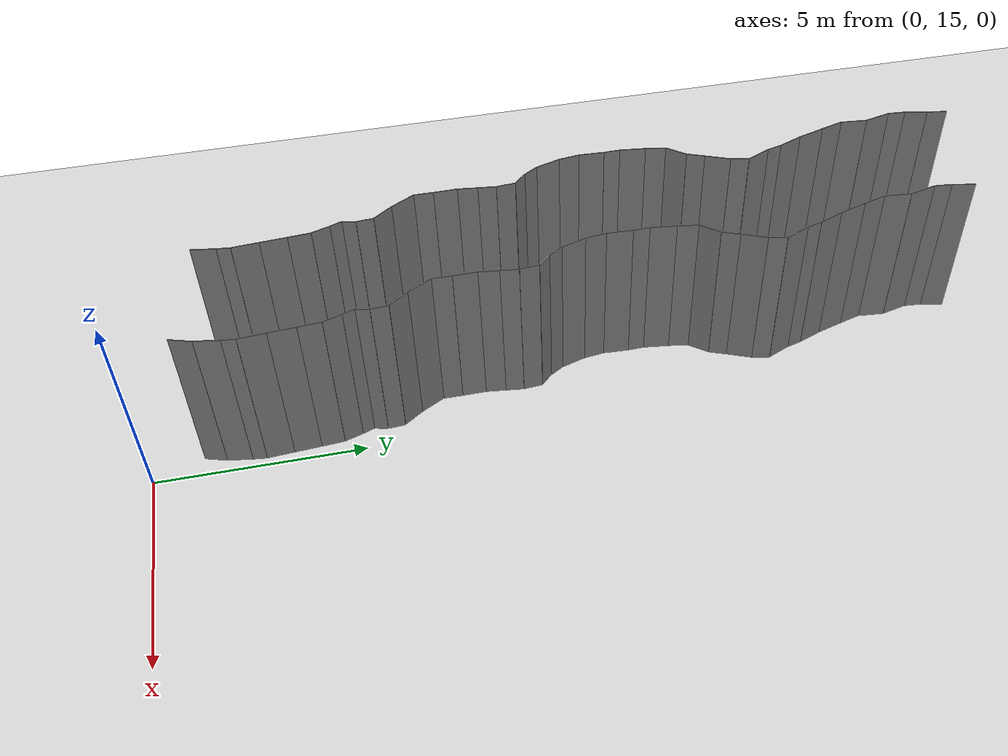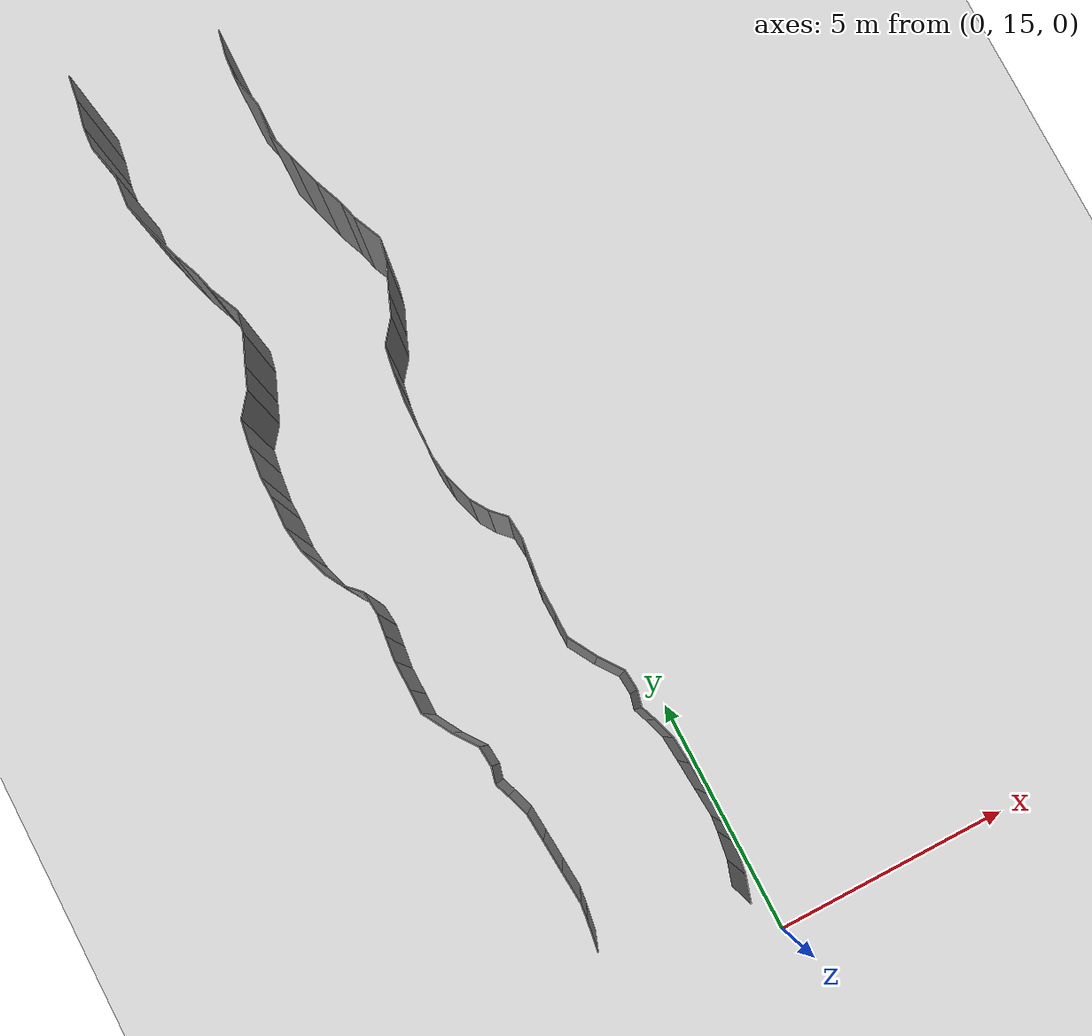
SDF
<sdf version="1.6">
 <world name="default">
  <model name="ground_plane">
   <static>1</static>
   <link name="link">
    <collision name="collision">
     <geometry><plane><normal>0 0 1</normal><size>200 200</size></plane></geometry>
     <surface><friction><ode><mu>100</mu><mu2>50</mu2></ode></friction></surface>
    </collision>
    <visual name="visual">
     <cast_shadows>0</cast_shadows>
     <geometry><plane><normal>0 0 1</normal><size>200 200</size></plane></geometry>
     <material>
      <script><uri>file://media/materials/scripts/gazebo.material</uri><name>Gazebo/Grey</name></script>
     </material>
    </visual>
   </link>
   <pose>0 100 0 0 -0 0</pose>
  </model>
  <model name="wall_73">
   <static>1</static>
   <pose>-0.4114704480557809 16.46128203625656 2 0 0 -0.3016783330120834</pose>
   <link name="link">
    <collision name="collision"><geometry><box><size>0.02 0.53916646876 4</size></box></geometry></collision>
    <visual name="visual">
     <material>
      <script><name>Gazebo/Grey</name><uri>file://media/materials/scripts/gazebo.material</uri></script>
     </material>
     <geometry><box><size>0.02 0.53916646876 4</size></box></geometry>
    </visual>
   </link>
  </model>
  <model name="wall_74">
   <static>1</static>
   <pose>-3.2860115752755705 17.01383835826963 2 0 0 -0.15249082622703872</pose>
   <link name="link">
    <collision name="collision"><geometry><box><size>0.02 0.5972257192 4</size></box></geometry></collision>
    <visual name="visual">
     <material>
      <script><name>Gazebo/Grey</name><uri>file://media/materials/scripts/gazebo.material</uri></script>
     </material>
     <geometry><box><size>0.02 0.5972257192 4</size></box></geometry>
    </visual>
   </link>
  </model>
  <model name="wall_75">
   <static>1</static>
   <pose>-0.28601157527557053 17.01383835826963 2 0 0 -0.15249082622703872</pose>
   <link name="link">
    <collision name="collision"><geometry><box><size>0.02 0.5972257192 4</size></box></geometry></collision>
    <visual name="visual">
     <material>
      <script><name>Gazebo/Grey</name><uri>file://media/materials/scripts/gazebo.material</uri></script>
     </material>
     <geometry><box><size>0.02 0.5972257192 4</size></box></geometry>
    </visual>
   </link>
  </model>
  <model name="wall_76">
   <static>1</static>
   <pose>-3.222303903417434 17.472723167792196 2 0 0 -0.11159348052013675</pose>
   <link name="link">
    <collision name="collision"><geometry><box><size>0.02 0.329523904005 4</size></box></geometry></collision>
    <visual name="visual">
     <material>
      <script><name>Gazebo/Grey</name><uri>file://media/materials/scripts/gazebo.material</uri></script>
     </material>
     <geometry><box><size>0.02 0.329523904005 4</size></box></geometry>
    </visual>
   </link>
  </model>
  <model name="wall_77">
   <static>1</static>
   <pose>-0.2223039034174339 17.472723167792196 2 0 0 -0.11159348052013675</pose>
   <link name="link">
    <collision name="collision"><geometry><box><size>0.02 0.329523904005 4</size></box></geometry></collision>
    <visual name="visual">
     <material>
      <script><name>Gazebo/Grey</name><uri>file://media/materials/scripts/gazebo.material</uri></script>
     </material>
     <geometry><box><size>0.02 0.329523904005 4</size></box></geometry>
    </visual>
   </link>
  </model>
  <model name="wall_78">
   <static>1</static>
   <pose>-3.226909889007271 17.96044130256942 2 0 0 0.07073227570332395</pose>
   <link name="link">
    <collision name="collision"><geometry><box><size>0.02 0.649586315642 4</size></box></geometry></collision>
    <visual name="visual">
     <material>
      <script><name>Gazebo/Grey</name><uri>file://media/materials/scripts/gazebo.material</uri></script>
     </material>
     <geometry><box><size>0.02 0.649586315642 4</size></box></geometry>
    </visual>
   </link>
  </model>
  <model name="wall_79">
   <static>1</static>
   <pose>-0.22690988900727094 17.96044130256942 2 0 0 0.07073227570332395</pose>
   <link name="link">
    <collision name="collision"><geometry><box><size>0.02 0.649586315642 4</size></box></geometry></collision>
    <visual name="visual">
     <material>
      <script><name>Gazebo/Grey</name><uri>file://media/materials/scripts/gazebo.material</uri></script>
     </material>
     <geometry><box><size>0.02 0.649586315642 4</size></box></geometry>
    </visual>
   </link>
  </model>
  <model name="wall_80">
   <static>1</static>
   <pose>-3.2712799035412155 18.60773303722731 2 0 0 0.06614246399566409</pose>
   <link name="link">
    <collision name="collision"><geometry><box><size>0.02 0.648038445143 4</size></box></geometry></collision>
    <visual name="visual">
     <material>
      <script><name>Gazebo/Grey</name><uri>file://media/materials/scripts/gazebo.material</uri></script>
     </material>
     <geometry><box><size>0.02 0.648038445143 4</size></box></geometry>
    </visual>
   </link>
  </model>
  <model name="wall_81">
   <static>1</static>
   <pose>-0.27127990354121545 18.60773303722731 2 0 0 0.06614246399566409</pose>
   <link name="link">
    <collision name="collision"><geometry><box><size>0.02 0.648038445143 4</size></box></geometry></collision>
    <visual name="visual">
     <material>
      <script><name>Gazebo/Grey</name><uri>file://media/materials/scripts/gazebo.material</uri></script>
     </material>
     <geometry><box><size>0.02 0.648038445143 4</size></box></geometry>
    </visual>
   </link>
  </model>
  <model name="wall_82">
   <static>1</static>
   <pose>-3.313457188234754 19.205664199724627 2 0 0 0.0754570886847107</pose>
   <link name="link">
    <collision name="collision"><geometry><box><size>0.02 0.550808235142 4</size></box></geometry></collision>
    <visual name="visual">
     <material>
      <script><name>Gazebo/Grey</name><uri>file://media/materials/scripts/gazebo.material</uri></script>
     </material>
     <geometry><box><size>0.02 0.550808235142 4</size></box></geometry>
    </visual>
   </link>
  </model>
  <model name="wall_83">
   <static>1</static>
   <pose>-0.3134571882347541 19.205664199724627 2 0 0 0.0754570886847107</pose>
   <link name="link">
    <collision name="collision"><geometry><box><size>0.02 0.550808235142 4</size></box></geometry></collision>
    <visual name="visual">
     <material>
      <script><name>Gazebo/Grey</name><uri>file://media/materials/scripts/gazebo.material</uri></script>
     </material>
     <geometry><box><size>0.02 0.550808235142 4</size></box></geometry>
    </visual>
   </link>
  </model>
  <model name="wall_84">
   <static>1</static>
   <pose>-3.4066834825812844 19.703090131503117 2 0 0 0.31444716952891916</pose>
   <link name="link">
    <collision name="collision"><geometry><box><size>0.02 0.468586958384 4</size></box></geometry></collision>
    <visual name="visual">
     <material>
      <script><name>Gazebo/Grey</name><uri>file://media/materials/scripts/gazebo.material</uri></script>
     </material>
     <geometry><box><size>0.02 0.468586958384 4</size></box></geometry>
    </visual>
   </link>
  </model>
  <model name="wall_85">
   <static>1</static>
   <pose>-0.4066834825812844 19.703090131503117 2 0 0 0.31444716952891916</pose>
   <link name="link">
    <collision name="collision"><geometry><box><size>0.02 0.468586958384 4</size></box></geometry></collision>
    <visual name="visual">
     <material>
      <script><name>Gazebo/Grey</name><uri>file://media/materials/scripts/gazebo.material</uri></script>
     </material>
     <geometry><box><size>0.02 0.468586958384 4</size></box></geometry>
    </visual>
   </link>
  </model>
  <model name="wall_86">
   <static>1</static>
   <pose>-3.53479159318961 20.07139679493496 2 0 0 0.36526435588221795</pose>
   <link name="link">
    <collision name="collision"><geometry><box><size>0.02 0.31155589357 4</size></box></geometry></collision>
    <visual name="visual">
     <material>
      <script><name>Gazebo/Grey</name><uri>file://media/materials/scripts/gazebo.material</uri></script>
     </material>
     <geometry><box><size>0.02 0.31155589357 4</size></box></geometry>
    </visual>
   </link>
  </model>
  <model name="wall_87">
   <static>1</static>
   <pose>-0.5347915931896101 20.07139679493496 2 0 0 0.36526435588221795</pose>
   <link name="link">
    <collision name="collision"><geometry><box><size>0.02 0.31155589357 4</size></box></geometry></collision>
    <visual name="visual">
     <material>
      <script><name>Gazebo/Grey</name><uri>file://media/materials/scripts/gazebo.material</uri></script>
     </material>
     <geometry><box><size>0.02 0.31155589357 4</size></box></geometry>
    </visual>
   </link>
  </model>
  <model name="wall_88">
   <static>1</static>
   <pose>-3.5517194320074505 20.377464157151785 2 0 0 -0.23660216385454935</pose>
   <link name="link">
    <collision name="collision"><geometry><box><size>0.02 0.330335504119 4</size></box></geometry></collision>
    <visual name="visual">
     <material>
      <script><name>Gazebo/Grey</name><uri>file://media/materials/scripts/gazebo.material</uri></script>
     </material>
     <geometry><box><size>0.02 0.330335504119 4</size></box></geometry>
    </visual>
   </link>
  </model>
  <model name="wall_89">
   <static>1</static>
   <pose>-0.5517194320074505 20.377464157151785 2 0 0 -0.23660216385454935</pose>
   <link name="link">
    <collision name="collision"><geometry><box><size>0.02 0.330335504119 4</size></box></geometry></collision>
    <visual name="visual">
     <material>
      <script><name>Gazebo/Grey</name><uri>file://media/materials/scripts/gazebo.material</uri></script>
     </material>
     <geometry><box><size>0.02 0.330335504119 4</size></box></geometry>
    </visual>
   </link>
  </model>
  <model name="wall_90">
   <static>1</static>
   <pose>-3.5292512122725728 20.747059901316863 2 0 0 0.07757101304430174</pose>
   <link name="link">
    <collision name="collision"><geometry><box><size>0.02 0.419320064797 4</size></box></geometry></collision>
    <visual name="visual">
     <material>
      <script><name>Gazebo/Grey</name><uri>file://media/materials/scripts/gazebo.material</uri></script>
     </material>
     <geometry><box><size>0.02 0.419320064797 4</size></box></geometry>
    </visual>
   </link>
  </model>
  <model name="wall_91">
   <static>1</static>
   <pose>-0.5292512122725728 20.747059901316863 2 0 0 0.07757101304430174</pose>
   <link name="link">
    <collision name="collision"><geometry><box><size>0.02 0.419320064797 4</size></box></geometry></collision>
    <visual name="visual">
     <material>
      <script><name>Gazebo/Grey</name><uri>file://media/materials/scripts/gazebo.material</uri></script>
     </material>
     <geometry><box><size>0.02 0.419320064797 4</size></box></geometry>
    </visual>
   </link>
  </model>
  <model name="wall_92">
   <static>1</static>
   <pose>-3.7108048090435637 21.18484831671798 2 0 0 0.6257482379373795</pose>
   <link name="link">
    <collision name="collision"><geometry><box><size>0.02 0.564470751829 4</size></box></geometry></collision>
    <visual name="visual">
     <material>
      <script><name>Gazebo/Grey</name><uri>file://media/materials/scripts/gazebo.material</uri></script>
     </material>
     <geometry><box><size>0.02 0.564470751829 4</size></box></geometry>
    </visual>
   </link>
  </model>
  <model name="wall_93">
   <static>1</static>
   <pose>-0.7108048090435637 21.18484831671798 2 0 0 0.6257482379373795</pose>
   <link name="link">
    <collision name="collision"><geometry><box><size>0.02 0.564470751829 4</size></box></geometry></collision>
    <visual name="visual">
     <material>
      <script><name>Gazebo/Grey</name><uri>file://media/materials/scripts/gazebo.material</uri></script>
     </material>
     <geometry><box><size>0.02 0.564470751829 4</size></box></geometry>
    </visual>
   </link>
  </model>
  <model name="wall_94">
   <static>1</static>
   <pose>-4.0391904235136025 21.69921129387883 2 0 0 0.5188211305539413</pose>
   <link name="link">
    <collision name="collision"><geometry><box><size>0.02 0.657767608367 4</size></box></geometry></collision>
    <visual name="visual">
     <material>
      <script><name>Gazebo/Grey</name><uri>file://media/materials/scripts/gazebo.material</uri></script>
     </material>
     <geometry><box><size>0.02 0.657767608367 4</size></box></geometry>
    </visual>
   </link>
  </model>
  <model name="wall_95">
   <static>1</static>
   <pose>-1.0391904235136025 21.69921129387883 2 0 0 0.5188211305539413</pose>
   <link name="link">
    <collision name="collision"><geometry><box><size>0.02 0.657767608367 4</size></box></geometry></collision>
    <visual name="visual">
     <material>
      <script><name>Gazebo/Grey</name><uri>file://media/materials/scripts/gazebo.material</uri></script>
     </material>
     <geometry><box><size>0.02 0.657767608367 4</size></box></geometry>
    </visual>
   </link>
  </model>
  <model name="wall_96">
   <static>1</static>
   <pose>-4.199389653301543 22.22280313398619 2 0 0 -0.012100973204774972</pose>
   <link name="link">
    <collision name="collision"><geometry><box><size>0.02 0.476010290294 4</size></box></geometry></collision>
    <visual name="visual">
     <material>
      <script><name>Gazebo/Grey</name><uri>file://media/materials/scripts/gazebo.material</uri></script>
     </material>
     <geometry><box><size>0.02 0.476010290294 4</size></box></geometry>
    </visual>
   </link>
  </model>
  <model name="wall_97">
   <static>1</static>
   <pose>-1.1993896533015427 22.22280313398619 2 0 0 -0.012100973204774972</pose>
   <link name="link">
    <collision name="collision"><geometry><box><size>0.02 0.476010290294 4</size></box></geometry></collision>
    <visual name="visual">
     <material>
      <script><name>Gazebo/Grey</name><uri>file://media/materials/scripts/gazebo.material</uri></script>
     </material>
     <geometry><box><size>0.02 0.476010290294 4</size></box></geometry>
    </visual>
   </link>
  </model>
  <model name="wall_98">
   <static>1</static>
   <pose>-4.200217048235786 22.751864012993288 2 0 0 0.012736378937735096</pose>
   <link name="link">
    <collision name="collision"><geometry><box><size>0.02 0.58219353896 4</size></box></geometry></collision>
    <visual name="visual">
     <material>
      <script><name>Gazebo/Grey</name><uri>file://media/materials/scripts/gazebo.material</uri></script>
     </material>
     <geometry><box><size>0.02 0.58219353896 4</size></box></geometry>
    </visual>
   </link>
  </model>
  <model name="wall_99">
   <static>1</static>
   <pose>-1.2002170482357863 22.751864012993288 2 0 0 0.012736378937735096</pose>
   <link name="link">
    <collision name="collision"><geometry><box><size>0.02 0.58219353896 4</size></box></geometry></collision>
    <visual name="visual">
     <material>
      <script><name>Gazebo/Grey</name><uri>file://media/materials/scripts/gazebo.material</uri></script>
     </material>
     <geometry><box><size>0.02 0.58219353896 4</size></box></geometry>
    </visual>
   </link>
  </model>
  <model name="wall_100">
   <static>1</static>
   <pose>-4.175108419552759 23.28675109093423 2 0 0 -0.11764294622061763</pose>
   <link name="link">
    <collision name="collision"><geometry><box><size>0.02 0.491021756526 4</size></box></geometry></collision>
    <visual name="visual">
     <material>
      <script><name>Gazebo/Grey</name><uri>file://media/materials/scripts/gazebo.material</uri></script>
     </material>
     <geometry><box><size>0.02 0.491021756526 4</size></box></geometry>
    </visual>
   </link>
  </model>
  <model name="wall_101">
   <static>1</static>
   <pose>-1.1751084195527586 23.28675109093423 2 0 0 -0.11764294622061763</pose>
   <link name="link">
    <collision name="collision"><geometry><box><size>0.02 0.491021756526 4</size></box></geometry></collision>
    <visual name="visual">
     <material>
      <script><name>Gazebo/Grey</name><uri>file://media/materials/scripts/gazebo.material</uri></script>
     </material>
     <geometry><box><size>0.02 0.491021756526 4</size></box></geometry>
    </visual>
   </link>
  </model>
  <model name="wall_102">
   <static>1</static>
   <pose>-4.119879193907147 23.75245800266014 2 0 0 -0.11847816505891771</pose>
   <link name="link">
    <collision name="collision"><geometry><box><size>0.02 0.446919037482 4</size></box></geometry></collision>
    <visual name="visual">
     <material>
      <script><name>Gazebo/Grey</name><uri>file://media/materials/scripts/gazebo.material</uri></script>
     </material>
     <geometry><box><size>0.02 0.446919037482 4</size></box></geometry>
    </visual>
   </link>
  </model>
  <model name="wall_103">
   <static>1</static>
   <pose>-1.1198791939071473 23.75245800266014 2 0 0 -0.11847816505891771</pose>
   <link name="link">
    <collision name="collision"><geometry><box><size>0.02 0.446919037482 4</size></box></geometry></collision>
    <visual name="visual">
     <material>
      <script><name>Gazebo/Grey</name><uri>file://media/materials/scripts/gazebo.material</uri></script>
     </material>
     <geometry><box><size>0.02 0.446919037482 4</size></box></geometry>
    </visual>
   </link>
  </model>
  <model name="wall_104">
   <static>1</static>
   <pose>-4.112479539640263 24.20812784091105 2 0 0 0.08115331397907186</pose>
   <link name="link">
    <collision name="collision"><geometry><box><size>0.02 0.46909754759 4</size></box></geometry></collision>
    <visual name="visual">
     <material>
      <script><name>Gazebo/Grey</name><uri>file://media/materials/scripts/gazebo.material</uri></script>
     </material>
     <geometry><box><size>0.02 0.46909754759 4</size></box></geometry>
    </visual>
   </link>
  </model>
  <model name="wall_105">
   <static>1</static>
   <pose>-1.1124795396402627 24.20812784091105 2 0 0 0.08115331397907186</pose>
   <link name="link">
    <collision name="collision"><geometry><box><size>0.02 0.46909754759 4</size></box></geometry></collision>
    <visual name="visual">
     <material>
      <script><name>Gazebo/Grey</name><uri>file://media/materials/scripts/gazebo.material</uri></script>
     </material>
     <geometry><box><size>0.02 0.46909754759 4</size></box></geometry>
    </visual>
   </link>
  </model>
  <model name="wall_106">
   <static>1</static>
   <pose>-4.270355145914979 24.584414482756504 2 0 0 0.7724348545949042</pose>
   <link name="link">
    <collision name="collision"><geometry><box><size>0.02 0.39795336454 4</size></box></geometry></collision>
    <visual name="visual">
     <material>
      <script><name>Gazebo/Grey</name><uri>file://media/materials/scripts/gazebo.material</uri></script>
     </material>
     <geometry><box><size>0.02 0.39795336454 4</size></box></geometry>
    </visual>
   </link>
  </model>
  <model name="wall_107">
   <static>1</static>
   <pose>-1.2703551459149791 24.584414482756504 2 0 0 0.7724348545949042</pose>
   <link name="link">
    <collision name="collision"><geometry><box><size>0.02 0.39795336454 4</size></box></geometry></collision>
    <visual name="visual">
     <material>
      <script><name>Gazebo/Grey</name><uri>file://media/materials/scripts/gazebo.material</uri></script>
     </material>
     <geometry><box><size>0.02 0.39795336454 4</size></box></geometry>
    </visual>
   </link>
  </model>
  <model name="wall_108">
   <static>1</static>
   <pose>-4.51538214024626 24.895604318308155 2 0 0 0.5617473215412201</pose>
   <link name="link">
    <collision name="collision"><geometry><box><size>0.02 0.398617330253 4</size></box></geometry></collision>
    <visual name="visual">
     <material>
      <script><name>Gazebo/Grey</name><uri>file://media/materials/scripts/gazebo.material</uri></script>
     </material>
     <geometry><box><size>0.02 0.398617330253 4</size></box></geometry>
    </visual>
   </link>
  </model>
  <model name="wall_109">
   <static>1</static>
   <pose>-1.5153821402462597 24.895604318308155 2 0 0 0.5617473215412201</pose>
   <link name="link">
    <collision name="collision"><geometry><box><size>0.02 0.398617330253 4</size></box></geometry></collision>
    <visual name="visual">
     <material>
      <script><name>Gazebo/Grey</name><uri>file://media/materials/scripts/gazebo.material</uri></script>
     </material>
     <geometry><box><size>0.02 0.398617330253 4</size></box></geometry>
    </visual>
   </link>
  </model>
  <model name="wall_110">
   <static>1</static>
   <pose>-4.715918928468572 25.365343626330155 2 0 0 0.3037647769878619</pose>
   <link name="link">
    <collision name="collision"><geometry><box><size>0.02 0.631007875423 4</size></box></geometry></collision>
    <visual name="visual">
     <material>
      <script><name>Gazebo/Grey</name><uri>file://media/materials/scripts/gazebo.material</uri></script>
     </material>
     <geometry><box><size>0.02 0.631007875423 4</size></box></geometry>
    </visual>
   </link>
  </model>
  <model name="wall_111">
   <static>1</static>
   <pose>-1.7159189284685716 25.365343626330155 2 0 0 0.3037647769878619</pose>
   <link name="link">
    <collision name="collision"><geometry><box><size>0.02 0.631007875423 4</size></box></geometry></collision>
    <visual name="visual">
     <material>
      <script><name>Gazebo/Grey</name><uri>file://media/materials/scripts/gazebo.material</uri></script>
     </material>
     <geometry><box><size>0.02 0.631007875423 4</size></box></geometry>
    </visual>
   </link>
  </model>
  <model name="wall_112">
   <static>1</static>
   <pose>-4.84492475645502 25.92246098627943 2 0 0 0.13444228082289975</pose>
   <link name="link">
    <collision name="collision"><geometry><box><size>0.02 0.516779474561 4</size></box></geometry></collision>
    <visual name="visual">
     <material>
      <script><name>Gazebo/Grey</name><uri>file://media/materials/scripts/gazebo.material</uri></script>
     </material>
     <geometry><box><size>0.02 0.516779474561 4</size></box></geometry>
    </visual>
   </link>
  </model>
  <model name="wall_113">
   <static>1</static>
   <pose>-1.8449247564550202 25.92246098627943 2 0 0 0.13444228082289975</pose>
   <link name="link">
    <collision name="collision"><geometry><box><size>0.02 0.516779474561 4</size></box></geometry></collision>
    <visual name="visual">
     <material>
      <script><name>Gazebo/Grey</name><uri>file://media/materials/scripts/gazebo.material</uri></script>
     </material>
     <geometry><box><size>0.02 0.516779474561 4</size></box></geometry>
    </visual>
   </link>
  </model>
  <model name="wall_114">
   <static>1</static>
   <pose>-4.864835429022781 26.495939491869354 2 0 0 -0.04635093816242111</pose>
   <link name="link">
    <collision name="collision"><geometry><box><size>0.02 0.635523390235 4</size></box></geometry></collision>
    <visual name="visual">
     <material>
      <script><name>Gazebo/Grey</name><uri>file://media/materials/scripts/gazebo.material</uri></script>
     </material>
     <geometry><box><size>0.02 0.635523390235 4</size></box></geometry>
    </visual>
   </link>
  </model>
  <model name="wall_115">
   <static>1</static>
   <pose>-1.864835429022781 26.495939491869354 2 0 0 -0.04635093816242111</pose>
   <link name="link">
    <collision name="collision"><geometry><box><size>0.02 0.635523390235 4</size></box></geometry></collision>
    <visual name="visual">
     <material>
      <script><name>Gazebo/Grey</name><uri>file://media/materials/scripts/gazebo.material</uri></script>
     </material>
     <geometry><box><size>0.02 0.635523390235 4</size></box></geometry>
    </visual>
   </link>
  </model>
  <model name="wall_116">
   <static>1</static>
   <pose>-4.854651048209577 27.01459610019526 2 0 0 0.022551257184421632</pose>
   <link name="link">
    <collision name="collision"><geometry><box><size>0.02 0.402574748645 4</size></box></geometry></collision>
    <visual name="visual">
     <material>
      <script><name>Gazebo/Grey</name><uri>file://media/materials/scripts/gazebo.material</uri></script>
     </material>
     <geometry><box><size>0.02 0.402574748645 4</size></box></geometry>
    </visual>
   </link>
  </model>
  <model name="wall_117">
   <static>1</static>
   <pose>-1.8546510482095773 27.01459610019526 2 0 0 0.022551257184421632</pose>
   <link name="link">
    <collision name="collision"><geometry><box><size>0.02 0.402574748645 4</size></box></geometry></collision>
    <visual name="visual">
     <material>
      <script><name>Gazebo/Grey</name><uri>file://media/materials/scripts/gazebo.material</uri></script>
     </material>
     <geometry><box><size>0.02 0.402574748645 4</size></box></geometry>
    </visual>
   </link>
  </model>
  <model name="wall_118">
   <static>1</static>
   <pose>-4.8220083266789935 27.535830897059892 2 0 0 -0.11567436434329582</pose>
   <link name="link">
    <collision name="collision"><geometry><box><size>0.02 0.644302969764 4</size></box></geometry></collision>
    <visual name="visual">
     <material>
      <script><name>Gazebo/Grey</name><uri>file://media/materials/scripts/gazebo.material</uri></script>
     </material>
     <geometry><box><size>0.02 0.644302969764 4</size></box></geometry>
    </visual>
   </link>
  </model>
  <model name="wall_119">
   <static>1</static>
   <pose>-1.8220083266789935 27.535830897059892 2 0 0 -0.11567436434329582</pose>
   <link name="link">
    <collision name="collision"><geometry><box><size>0.02 0.644302969764 4</size></box></geometry></collision>
    <visual name="visual">
     <material>
      <script><name>Gazebo/Grey</name><uri>file://media/materials/scripts/gazebo.material</uri></script>
     </material>
     <geometry><box><size>0.02 0.644302969764 4</size></box></geometry>
    </visual>
   </link>
  </model>
  <model name="wall_120">
   <static>1</static>
   <pose>-4.741748999920329 28.10573895653917 2 0 0 -0.17069584439837163</pose>
   <link name="link">
    <collision name="collision"><geometry><box><size>0.02 0.507190003539 4</size></box></geometry></collision>
    <visual name="visual">
     <material>
      <script><name>Gazebo/Grey</name><uri>file://media/materials/scripts/gazebo.material</uri></script>
     </material>
     <geometry><box><size>0.02 0.507190003539 4</size></box></geometry>
    </visual>
   </link>
  </model>
  <model name="wall_121">
   <static>1</static>
   <pose>-1.741748999920329 28.10573895653917 2 0 0 -0.17069584439837163</pose>
   <link name="link">
    <collision name="collision"><geometry><box><size>0.02 0.507190003539 4</size></box></geometry></collision>
    <visual name="visual">
     <material>
      <script><name>Gazebo/Grey</name><uri>file://media/materials/scripts/gazebo.material</uri></script>
     </material>
     <geometry><box><size>0.02 0.507190003539 4</size></box></geometry>
    </visual>
   </link>
  </model>
  <model name="wall_122">
   <static>1</static>
   <pose>-4.52510109767204 28.575721205760917 2 0 0 -0.6678092103720487</pose>
   <link name="link">
    <collision name="collision"><geometry><box><size>0.02 0.560566310796 4</size></box></geometry></collision>
    <visual name="visual">
     <material>
      <script><name>Gazebo/Grey</name><uri>file://media/materials/scripts/gazebo.material</uri></script>
     </material>
     <geometry><box><size>0.02 0.560566310796 4</size></box></geometry>
    </visual>
   </link>
  </model>
  <model name="wall_123">
   <static>1</static>
   <pose>-1.5251010976720396 28.575721205760917 2 0 0 -0.6678092103720487</pose>
   <link name="link">
    <collision name="collision"><geometry><box><size>0.02 0.560566310796 4</size></box></geometry></collision>
    <visual name="visual">
     <material>
      <script><name>Gazebo/Grey</name><uri>file://media/materials/scripts/gazebo.material</uri></script>
     </material>
     <geometry><box><size>0.02 0.560566310796 4</size></box></geometry>
    </visual>
   </link>
  </model>
  <model name="wall_124">
   <static>1</static>
   <pose>-4.2684474324747015 29.005312158448586 2 0 0 -0.3775247606686288</pose>
   <link name="link">
    <collision name="collision"><geometry><box><size>0.02 0.450780310093 4</size></box></geometry></collision>
    <visual name="visual">
     <material>
      <script><name>Gazebo/Grey</name><uri>file://media/materials/scripts/gazebo.material</uri></script>
     </material>
     <geometry><box><size>0.02 0.450780310093 4</size></box></geometry>
    </visual>
   </link>
  </model>
  <model name="wall_125">
   <static>1</static>
   <pose>-1.2684474324747015 29.005312158448586 2 0 0 -0.3775247606686288</pose>
   <link name="link">
    <collision name="collision"><geometry><box><size>0.02 0.450780310093 4</size></box></geometry></collision>
    <visual name="visual">
     <material>
      <script><name>Gazebo/Grey</name><uri>file://media/materials/scripts/gazebo.material</uri></script>
     </material>
     <geometry><box><size>0.02 0.450780310093 4</size></box></geometry>
    </visual>
   </link>
  </model>
  <model name="wall_126">
   <static>1</static>
   <pose>-4.062142579750216 29.511383651221195 2 0 0 -0.3938066125503043</pose>
   <link name="link">
    <collision name="collision"><geometry><box><size>0.02 0.642269067793 4</size></box></geometry></collision>
    <visual name="visual">
     <material>
      <script><name>Gazebo/Grey</name><uri>file://media/materials/scripts/gazebo.material</uri></script>
     </material>
     <geometry><box><size>0.02 0.642269067793 4</size></box></geometry>
    </visual>
   </link>
  </model>
  <model name="wall_127">
   <static>1</static>
   <pose>-1.0621425797502164 29.511383651221195 2 0 0 -0.3938066125503043</pose>
   <link name="link">
    <collision name="collision"><geometry><box><size>0.02 0.642269067793 4</size></box></geometry></collision>
    <visual name="visual">
     <material>
      <script><name>Gazebo/Grey</name><uri>file://media/materials/scripts/gazebo.material</uri></script>
     </material>
     <geometry><box><size>0.02 0.642269067793 4</size></box></geometry>
    </visual>
   </link>
  </model>
  <model name="wall_128">
   <static>1</static>
   <pose>-3.8915119418993327 30.027741148563393 2 0 0 -0.21243425269853677</pose>
   <link name="link">
    <collision name="collision"><geometry><box><size>0.02 0.449717724289 4</size></box></geometry></collision>
    <visual name="visual">
     <material>
      <script><name>Gazebo/Grey</name><uri>file://media/materials/scripts/gazebo.material</uri></script>
     </material>
     <geometry><box><size>0.02 0.449717724289 4</size></box></geometry>
    </visual>
   </link>
  </model>
  <model name="wall_129">
   <static>1</static>
   <pose>-0.8915119418993327 30.027741148563393 2 0 0 -0.21243425269853677</pose>
   <link name="link">
    <collision name="collision"><geometry><box><size>0.02 0.449717724289 4</size></box></geometry></collision>
    <visual name="visual">
     <material>
      <script><name>Gazebo/Grey</name><uri>file://media/materials/scripts/gazebo.material</uri></script>
     </material>
     <geometry><box><size>0.02 0.449717724289 4</size></box></geometry>
    </visual>
   </link>
  </model>
  <model name="wall_130">
   <static>1</static>
   <pose>-3.9709140098848907 30.533206059562605 2 0 0 0.4177886568554712</pose>
   <link name="link">
    <collision name="collision"><geometry><box><size>0.02 0.6250861509 4</size></box></geometry></collision>
    <visual name="visual">
     <material>
      <script><name>Gazebo/Grey</name><uri>file://media/materials/scripts/gazebo.material</uri></script>
     </material>
     <geometry><box><size>0.02 0.6250861509 4</size></box></geometry>
    </visual>
   </link>
  </model>
  <model name="wall_131">
   <static>1</static>
   <pose>-0.9709140098848907 30.533206059562605 2 0 0 0.4177886568554712</pose>
   <link name="link">
    <collision name="collision"><geometry><box><size>0.02 0.6250861509 4</size></box></geometry></collision>
    <visual name="visual">
     <material>
      <script><name>Gazebo/Grey</name><uri>file://media/materials/scripts/gazebo.material</uri></script>
     </material>
     <geometry><box><size>0.02 0.6250861509 4</size></box></geometry>
    </visual>
   </link>
  </model>
  <model name="wall_132">
   <static>1</static>
   <pose>-4.145393975817772 31.00141010468174 2 0 0 0.25543191785698127</pose>
   <link name="link">
    <collision name="collision"><geometry><box><size>0.02 0.377329326662 4</size></box></geometry></collision>
    <visual name="visual">
     <material>
      <script><name>Gazebo/Grey</name><uri>file://media/materials/scripts/gazebo.material</uri></script>
     </material>
     <geometry><box><size>0.02 0.377329326662 4</size></box></geometry>
    </visual>
   </link>
  </model>
  <model name="wall_133">
   <static>1</static>
   <pose>-1.1453939758177718 31.00141010468174 2 0 0 0.25543191785698127</pose>
   <link name="link">
    <collision name="collision"><geometry><box><size>0.02 0.377329326662 4</size></box></geometry></collision>
    <visual name="visual">
     <material>
      <script><name>Gazebo/Grey</name><uri>file://media/materials/scripts/gazebo.material</uri></script>
     </material>
     <geometry><box><size>0.02 0.377329326662 4</size></box></geometry>
    </visual>
   </link>
  </model>
  <model name="wall_134">
   <static>1</static>
   <pose>-4.307493487826841 31.472858999457713 2 0 0 0.3771259163844314</pose>
   <link name="link">
    <collision name="collision"><geometry><box><size>0.02 0.621484891465 4</size></box></geometry></collision>
    <visual name="visual">
     <material>
      <script><name>Gazebo/Grey</name><uri>file://media/materials/scripts/gazebo.material</uri></script>
     </material>
     <geometry><box><size>0.02 0.621484891465 4</size></box></geometry>
    </visual>
   </link>
  </model>
  <model name="wall_135">
   <static>1</static>
   <pose>-1.3074934878268412 31.472858999457713 2 0 0 0.3771259163844314</pose>
   <link name="link">
    <collision name="collision"><geometry><box><size>0.02 0.621484891465 4</size></box></geometry></collision>
    <visual name="visual">
     <material>
      <script><name>Gazebo/Grey</name><uri>file://media/materials/scripts/gazebo.material</uri></script>
     </material>
     <geometry><box><size>0.02 0.621484891465 4</size></box></geometry>
    </visual>
   </link>
  </model>
  <model name="wall_136">
   <static>1</static>
   <pose>-4.5241030781021925 32.093940169372644 2 0 0 0.29841877228856484</pose>
   <link name="link">
    <collision name="collision"><geometry><box><size>0.02 0.695071514345 4</size></box></geometry></collision>
    <visual name="visual">
     <material>
      <script><name>Gazebo/Grey</name><uri>file://media/materials/scripts/gazebo.material</uri></script>
     </material>
     <geometry><box><size>0.02 0.695071514345 4</size></box></geometry>
    </visual>
   </link>
  </model>
  <model name="wall_137">
   <static>1</static>
   <pose>-1.5241030781021925 32.093940169372644 2 0 0 0.29841877228856484</pose>
   <link name="link">
    <collision name="collision"><geometry><box><size>0.02 0.695071514345 4</size></box></geometry></collision>
    <visual name="visual">
     <material>
      <script><name>Gazebo/Grey</name><uri>file://media/materials/scripts/gazebo.material</uri></script>
     </material>
     <geometry><box><size>0.02 0.695071514345 4</size></box></geometry>
    </visual>
   </link>
  </model>
  <model name="wall_138">
   <static>1</static>
   <pose>-4.707633753952376 32.70543436724991 2 0 0 0.2834114023798317</pose>
   <link name="link">
    <collision name="collision"><geometry><box><size>0.02 0.581848896556 4</size></box></geometry></collision>
    <visual name="visual">
     <material>
      <script><name>Gazebo/Grey</name><uri>file://media/materials/scripts/gazebo.material</uri></script>
     </material>
     <geometry><box><size>0.02 0.581848896556 4</size></box></geometry>
    </visual>
   </link>
  </model>
  <model name="wall_139">
   <static>1</static>
   <pose>-1.7076337539523756 32.70543436724991 2 0 0 0.2834114023798317</pose>
   <link name="link">
    <collision name="collision"><geometry><box><size>0.02 0.581848896556 4</size></box></geometry></collision>
    <visual name="visual">
     <material>
      <script><name>Gazebo/Grey</name><uri>file://media/materials/scripts/gazebo.material</uri></script>
     </material>
     <geometry><box><size>0.02 0.581848896556 4</size></box></geometry>
    </visual>
   </link>
  </model>
  <model name="wall_140">
   <static>1</static>
   <pose>-4.757905092704493 33.31518189126315 2 0 0 -0.09378549129254675</pose>
   <link name="link">
    <collision name="collision"><geometry><box><size>0.02 0.663774847771 4</size></box></geometry></collision>
    <visual name="visual">
     <material>
      <script><name>Gazebo/Grey</name><uri>file://media/materials/scripts/gazebo.material</uri></script>
     </material>
     <geometry><box><size>0.02 0.663774847771 4</size></box></geometry>
    </visual>
   </link>
  </model>
  <model name="wall_141">
   <static>1</static>
   <pose>-1.757905092704493 33.31518189126315 2 0 0 -0.09378549129254675</pose>
   <link name="link">
    <collision name="collision"><geometry><box><size>0.02 0.663774847771 4</size></box></geometry></collision>
    <visual name="visual">
     <material>
      <script><name>Gazebo/Grey</name><uri>file://media/materials/scripts/gazebo.material</uri></script>
     </material>
     <geometry><box><size>0.02 0.663774847771 4</size></box></geometry>
    </visual>
   </link>
  </model>
  <model name="wall_142">
   <static>1</static>
   <pose>-4.805934140049246 33.971615833724165 2 0 0 0.23806229222124956</pose>
   <link name="link">
    <collision name="collision"><geometry><box><size>0.02 0.670932565787 4</size></box></geometry></collision>
    <visual name="visual">
     <material>
      <script><name>Gazebo/Grey</name><uri>file://media/materials/scripts/gazebo.material</uri></script>
     </material>
     <geometry><box><size>0.02 0.670932565787 4</size></box></geometry>
    </visual>
   </link>
  </model>
  <model name="wall_143">
   <static>1</static>
   <pose>-1.8059341400492457 33.971615833724165 2 0 0 0.23806229222124956</pose>
   <link name="link">
    <collision name="collision"><geometry><box><size>0.02 0.670932565787 4</size></box></geometry></collision>
    <visual name="visual">
     <material>
      <script><name>Gazebo/Grey</name><uri>file://media/materials/scripts/gazebo.material</uri></script>
     </material>
     <geometry><box><size>0.02 0.670932565787 4</size></box></geometry>
    </visual>
   </link>
  </model>
  <model name="wall_144">
   <static>1</static>
   <pose>-4.868578063470765 34.515963315055004 2 0 0 -0.0752699839634469</pose>
   <link name="link">
    <collision name="collision"><geometry><box><size>0.02 0.437924837694 4</size></box></geometry></collision>
    <visual name="visual">
     <material>
      <script><name>Gazebo/Grey</name><uri>file://media/materials/scripts/gazebo.material</uri></script>
     </material>
     <geometry><box><size>0.02 0.437924837694 4</size></box></geometry>
    </visual>
   </link>
  </model>
  <model name="wall_145">
   <static>1</static>
   <pose>-1.868578063470765 34.515963315055004 2 0 0 -0.0752699839634469</pose>
   <link name="link">
    <collision name="collision"><geometry><box><size>0.02 0.437924837694 4</size></box></geometry></collision>
    <visual name="visual">
     <material>
      <script><name>Gazebo/Grey</name><uri>file://media/materials/scripts/gazebo.material</uri></script>
     </material>
     <geometry><box><size>0.02 0.437924837694 4</size></box></geometry>
    </visual>
   </link>
  </model>
  <model name="wall_146">
   <static>1</static>
   <pose>-4.7928565575362185 35.013627618098255 2 0 0 -0.20904238111871856</pose>
   <link name="link">
    <collision name="collision"><geometry><box><size>0.02 0.5710760022 4</size></box></geometry></collision>
    <visual name="visual">
     <material>
      <script><name>Gazebo/Grey</name><uri>file://media/materials/scripts/gazebo.material</uri></script>
     </material>
     <geometry><box><size>0.02 0.5710760022 4</size></box></geometry>
    </visual>
   </link>
  </model>
  <model name="wall_147">
   <static>1</static>
   <pose>-1.7928565575362185 35.013627618098255 2 0 0 -0.20904238111871856</pose>
   <link name="link">
    <collision name="collision"><geometry><box><size>0.02 0.5710760022 4</size></box></geometry></collision>
    <visual name="visual">
     <material>
      <script><name>Gazebo/Grey</name><uri>file://media/materials/scripts/gazebo.material</uri></script>
     </material>
     <geometry><box><size>0.02 0.5710760022 4</size></box></geometry>
    </visual>
   </link>
  </model>
  <model name="wall_148">
   <static>1</static>
   <pose>-4.694563751310873 35.54319548367511 2 0 0 -0.1547474775584784</pose>
   <link name="link">
    <collision name="collision"><geometry><box><size>0.02 0.506544968688 4</size></box></geometry></collision>
    <visual name="visual">
     <material>
      <script><name>Gazebo/Grey</name><uri>file://media/materials/scripts/gazebo.material</uri></script>
     </material>
     <geometry><box><size>0.02 0.506544968688 4</size></box></geometry>
    </visual>
   </link>
  </model>
 </world>
</sdf>
